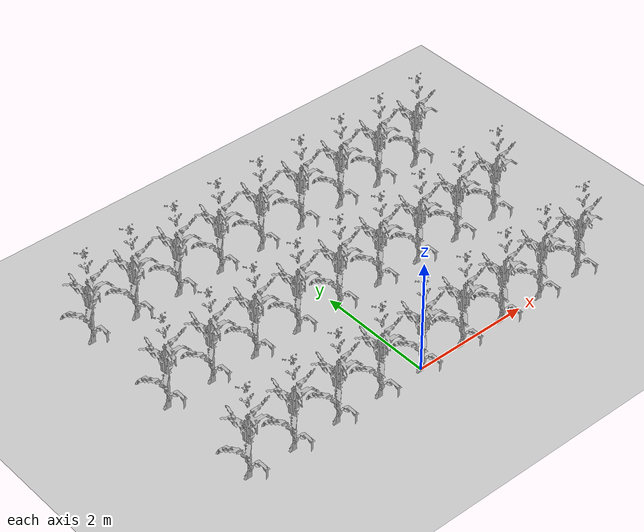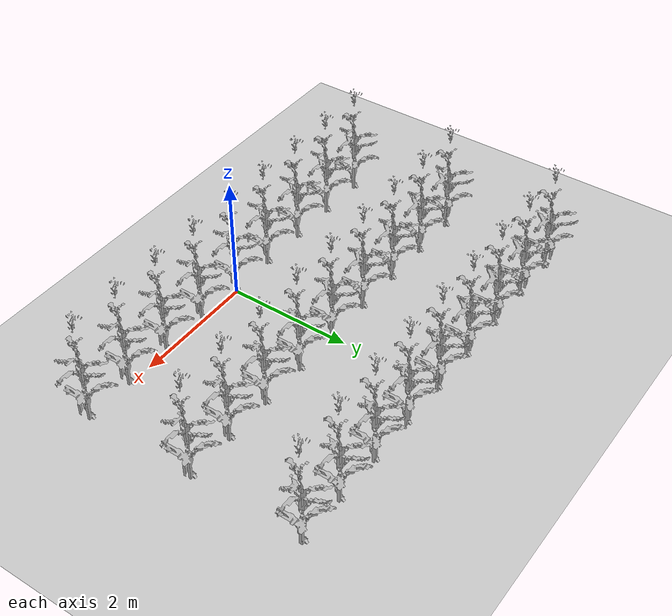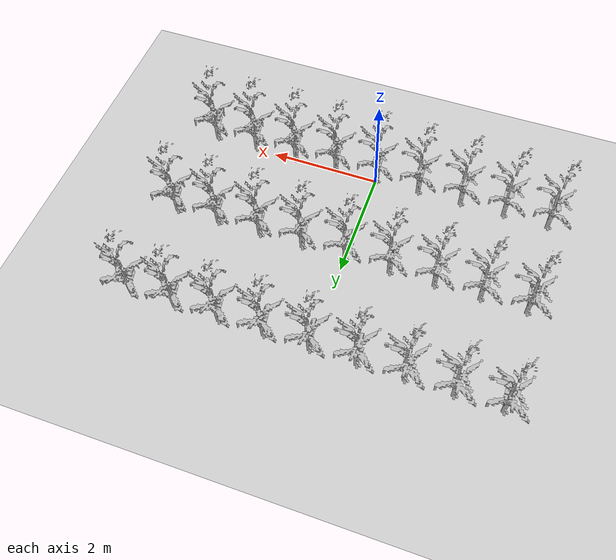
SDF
<?xml version="1.0"?>

<sdf version='1.4'>
    <world name='default'>
        <light name='sun' type='directional'>
	        <cast_shadows>1</cast_shadows>
	        <pose>0 0 10 0 -0 0</pose>
	        <diffuse>0.8 0.8 0.8 1</diffuse>
	        <specular>0.2 0.2 0.2 1</specular>
	        <attenuation>
	            <range>1000</range>
	            <constant>0.9</constant>
	            <linear>0.01</linear>
	            <quadratic>0.001</quadratic>
	        </attenuation>
	        <direction>-0.5 0.1 -0.9</direction>
        </light>
	    <model name='ground_plane'>
	      <static>1</static>
	      <link name='link'>
	        <collision name='collision'>
	          <geometry>
	            <plane>
	              <normal>0 0 1</normal>
	              <size>100 100</size>
	            </plane>
	          </geometry>
	          <surface>
	            <friction>
	              <ode>
	                <mu>100</mu>
	                <mu2>50</mu2>
	              </ode>
	            </friction>
	            <bounce/>
	            <contact>
	              <ode/>
	            </contact>
	          </surface>
	          <max_contacts>10</max_contacts>
	        </collision>
	        <visual name='visual'>
	          <cast_shadows>0</cast_shadows>
	          <geometry>
	            <plane>
	              <normal>0 0 1</normal>
	              <size>1000 1000</size>
	            </plane>
	          </geometry>
	          <material>
	            <script>
	              <uri>file://media/materials/scripts/gazebo.material</uri>
	              <name>Gazebo/Grey</name>
	            </script>
	          </material>
	        </visual>
	        <velocity_decay>
	          <linear>0</linear>
	          <angular>0</angular>
	        </velocity_decay>
	        <self_collide>0</self_collide>
	        <kinematic>0</kinematic>
	        <gravity>1</gravity>
	      </link>
	    </model>
	    <physics type='ode'>
	      <max_step_size>0.01</max_step_size>
	      <real_time_factor>1</real_time_factor>
	      <real_time_update_rate>100</real_time_update_rate>
	      <gravity>0 0 -9.8</gravity>
	    </physics>
	    <scene>
	      <ambient>0.4 0.4 0.4 1</ambient>
	      <background>0.7 0.7 0.7 1</background>
	      <shadows>1</shadows>
	    </scene>

	    <model name='corn_stalk_0,0'>

	      	<static>1</static>

			<link name='link'>

				<pose>0 0 0 0 0 0</pose>
				<visual name='visual'>
				<geometry>
					<mesh>
					<uri>model://corn/meshes/corn_stack.stl</uri>
					<scale>0.01 0.01 0.01</scale>
					</mesh>
				</geometry>
				<material>
				<script>
					<uri>model://corn/materials/scripts</uri>
					<uri>model://corn/materials/textures</uri>
					<name>corn_stack/Diffuse</name>
				</script>
				</material>
				</visual>

				<collision name="Default">
					<pose>0 0 0 0 0 0</pose>
					<geometry>
					<mesh>
					<uri>model://corn/meshes/corn_stack.stl</uri>
					<scale>0.01 0.01 0.01</scale>
					</mesh>
					</geometry>
				</collision>
			</link>
	    </model>
	    <model name='corn_stalk_1,0'>

	      	<static>1</static>

			<link name='link'>

				<pose>0.8 0 0 0 0 0</pose>
				<visual name='visual'>
				<geometry>
					<mesh>
					<uri>model://corn/meshes/corn_stack.stl</uri>
					<scale>0.01 0.01 0.01</scale>
					</mesh>
				</geometry>
				<material>
				<script>
					<uri>model://corn/materials/scripts</uri>
					<uri>model://corn/materials/textures</uri>
					<name>corn_stack/Diffuse</name>
				</script>
				</material>
				</visual>

				<collision name="Default">
					<pose>0 0 0 0 0 0</pose>
					<geometry>
					<mesh>
					<uri>model://corn/meshes/corn_stack.stl</uri>
					<scale>0.01 0.01 0.01</scale>
					</mesh>
					</geometry>
				</collision>
			</link>
	    </model>
	    <model name='corn_stalk_2,0'>

	      	<static>1</static>

			<link name='link'>

				<pose>1.6 0 0 0 0 0</pose>
				<visual name='visual'>
				<geometry>
					<mesh>
					<uri>model://corn/meshes/corn_stack.stl</uri>
					<scale>0.01 0.01 0.01</scale>
					</mesh>
				</geometry>
				<material>
				<script>
					<uri>model://corn/materials/scripts</uri>
					<uri>model://corn/materials/textures</uri>
					<name>corn_stack/Diffuse</name>
				</script>
				</material>
				</visual>

				<collision name="Default">
					<pose>0 0 0 0 0 0</pose>
					<geometry>
					<mesh>
					<uri>model://corn/meshes/corn_stack.stl</uri>
					<scale>0.01 0.01 0.01</scale>
					</mesh>
					</geometry>
				</collision>
			</link>
	    </model>
	    <model name='corn_stalk_3,0'>

	      	<static>1</static>

			<link name='link'>

				<pose>2.4 0 0 0 0 0</pose>
				<visual name='visual'>
				<geometry>
					<mesh>
					<uri>model://corn/meshes/corn_stack.stl</uri>
					<scale>0.01 0.01 0.01</scale>
					</mesh>
				</geometry>
				<material>
				<script>
					<uri>model://corn/materials/scripts</uri>
					<uri>model://corn/materials/textures</uri>
					<name>corn_stack/Diffuse</name>
				</script>
				</material>
				</visual>

				<collision name="Default">
					<pose>0 0 0 0 0 0</pose>
					<geometry>
					<mesh>
					<uri>model://corn/meshes/corn_stack.stl</uri>
					<scale>0.01 0.01 0.01</scale>
					</mesh>
					</geometry>
				</collision>
			</link>
	    </model>
	    <model name='corn_stalk_4,0'>

	      	<static>1</static>

			<link name='link'>

				<pose>3.2 0 0 0 0 0</pose>
				<visual name='visual'>
				<geometry>
					<mesh>
					<uri>model://corn/meshes/corn_stack.stl</uri>
					<scale>0.01 0.01 0.01</scale>
					</mesh>
				</geometry>
				<material>
				<script>
					<uri>model://corn/materials/scripts</uri>
					<uri>model://corn/materials/textures</uri>
					<name>corn_stack/Diffuse</name>
				</script>
				</material>
				</visual>

				<collision name="Default">
					<pose>0 0 0 0 0 0</pose>
					<geometry>
					<mesh>
					<uri>model://corn/meshes/corn_stack.stl</uri>
					<scale>0.01 0.01 0.01</scale>
					</mesh>
					</geometry>
				</collision>
			</link>
	    </model>
	    <model name='corn_stalk_-1,0'>

	      	<static>1</static>

			<link name='link'>

				<pose>-0.8 0 0 0 0 0</pose>
				<visual name='visual'>
				<geometry>
					<mesh>
					<uri>model://corn/meshes/corn_stack.stl</uri>
					<scale>0.01 0.01 0.01</scale>
					</mesh>
				</geometry>
				<material>
				<script>
					<uri>model://corn/materials/scripts</uri>
					<uri>model://corn/materials/textures</uri>
					<name>corn_stack/Diffuse</name>
				</script>
				</material>
				</visual>

				<collision name="Default">
					<pose>0 0 0 0 0 0</pose>
					<geometry>
					<mesh>
					<uri>model://corn/meshes/corn_stack.stl</uri>
					<scale>0.01 0.01 0.01</scale>
					</mesh>
					</geometry>
				</collision>
			</link>
	    </model>
	    <model name='corn_stalk_-2,0'>

	      	<static>1</static>

			<link name='link'>

				<pose>-1.6 0 0 0 0 0</pose>
				<visual name='visual'>
				<geometry>
					<mesh>
					<uri>model://corn/meshes/corn_stack.stl</uri>
					<scale>0.01 0.01 0.01</scale>
					</mesh>
				</geometry>
				<material>
				<script>
					<uri>model://corn/materials/scripts</uri>
					<uri>model://corn/materials/textures</uri>
					<name>corn_stack/Diffuse</name>
				</script>
				</material>
				</visual>

				<collision name="Default">
					<pose>0 0 0 0 0 0</pose>
					<geometry>
					<mesh>
					<uri>model://corn/meshes/corn_stack.stl</uri>
					<scale>0.01 0.01 0.01</scale>
					</mesh>
					</geometry>
				</collision>
			</link>
	    </model>
	    <model name='corn_stalk_-3,0'>

	      	<static>1</static>

			<link name='link'>

				<pose>-2.4 0 0 0 0 0</pose>
				<visual name='visual'>
				<geometry>
					<mesh>
					<uri>model://corn/meshes/corn_stack.stl</uri>
					<scale>0.01 0.01 0.01</scale>
					</mesh>
				</geometry>
				<material>
				<script>
					<uri>model://corn/materials/scripts</uri>
					<uri>model://corn/materials/textures</uri>
					<name>corn_stack/Diffuse</name>
				</script>
				</material>
				</visual>

				<collision name="Default">
					<pose>0 0 0 0 0 0</pose>
					<geometry>
					<mesh>
					<uri>model://corn/meshes/corn_stack.stl</uri>
					<scale>0.01 0.01 0.01</scale>
					</mesh>
					</geometry>
				</collision>
			</link>
	    </model>
	    <model name='corn_stalk_-4,0'>

	      	<static>1</static>

			<link name='link'>

				<pose>-3.2 0 0 0 0 0</pose>
				<visual name='visual'>
				<geometry>
					<mesh>
					<uri>model://corn/meshes/corn_stack.stl</uri>
					<scale>0.01 0.01 0.01</scale>
					</mesh>
				</geometry>
				<material>
				<script>
					<uri>model://corn/materials/scripts</uri>
					<uri>model://corn/materials/textures</uri>
					<name>corn_stack/Diffuse</name>
				</script>
				</material>
				</visual>

				<collision name="Default">
					<pose>0 0 0 0 0 0</pose>
					<geometry>
					<mesh>
					<uri>model://corn/meshes/corn_stack.stl</uri>
					<scale>0.01 0.01 0.01</scale>
					</mesh>
					</geometry>
				</collision>
			</link>
	    </model>

		<model name='corn_stalk_0,1'>

	      	<static>1</static>

			<link name='link'>

				<pose>0 1.8 0 0 0 0</pose>
				<visual name='visual'>
				<geometry>
					<mesh>
					<uri>model://corn/meshes/corn_stack.stl</uri>
					<scale>0.01 0.01 0.01</scale>
					</mesh>
				</geometry>
				<material>
				<script>
					<uri>model://corn/materials/scripts</uri>
					<uri>model://corn/materials/textures</uri>
					<name>corn_stack/Diffuse</name>
				</script>
				</material>
				</visual>

				<collision name="Default">
					<pose>0 0 0 0 0 0</pose>
					<geometry>
					<mesh>
					<uri>model://corn/meshes/corn_stack.stl</uri>
					<scale>0.01 0.01 0.01</scale>
					</mesh>
					</geometry>
				</collision>
			</link>
	    </model>
	    <model name='corn_stalk_1,1'>

	      	<static>1</static>

			<link name='link'>

				<pose>0.8 1.8 0 0 0 0</pose>
				<visual name='visual'>
				<geometry>
					<mesh>
					<uri>model://corn/meshes/corn_stack.stl</uri>
					<scale>0.01 0.01 0.01</scale>
					</mesh>
				</geometry>
				<material>
				<script>
					<uri>model://corn/materials/scripts</uri>
					<uri>model://corn/materials/textures</uri>
					<name>corn_stack/Diffuse</name>
				</script>
				</material>
				</visual>

				<collision name="Default">
					<pose>0 0 0 0 0 0</pose>
					<geometry>
					<mesh>
					<uri>model://corn/meshes/corn_stack.stl</uri>
					<scale>0.01 0.01 0.01</scale>
					</mesh>
					</geometry>
				</collision>
			</link>
	    </model>
	    <model name='corn_stalk_2,1'>

	      	<static>1</static>

			<link name='link'>

				<pose>1.6 1.8 0 0 0 0</pose>
				<visual name='visual'>
				<geometry>
					<mesh>
					<uri>model://corn/meshes/corn_stack.stl</uri>
					<scale>0.01 0.01 0.01</scale>
					</mesh>
				</geometry>
				<material>
				<script>
					<uri>model://corn/materials/scripts</uri>
					<uri>model://corn/materials/textures</uri>
					<name>corn_stack/Diffuse</name>
				</script>
				</material>
				</visual>

				<collision name="Default">
					<pose>0 0 0 0 0 0</pose>
					<geometry>
					<mesh>
					<uri>model://corn/meshes/corn_stack.stl</uri>
					<scale>0.01 0.01 0.01</scale>
					</mesh>
					</geometry>
				</collision>
			</link>
	    </model>
	    <model name='corn_stalk_3,1'>

	      	<static>1</static>

			<link name='link'>

				<pose>2.4 1.8 0 0 0 0</pose>
				<visual name='visual'>
				<geometry>
					<mesh>
					<uri>model://corn/meshes/corn_stack.stl</uri>
					<scale>0.01 0.01 0.01</scale>
					</mesh>
				</geometry>
				<material>
				<script>
					<uri>model://corn/materials/scripts</uri>
					<uri>model://corn/materials/textures</uri>
					<name>corn_stack/Diffuse</name>
				</script>
				</material>
				</visual>

				<collision name="Default">
					<pose>0 0 0 0 0 0</pose>
					<geometry>
					<mesh>
					<uri>model://corn/meshes/corn_stack.stl</uri>
					<scale>0.01 0.01 0.01</scale>
					</mesh>
					</geometry>
				</collision>
			</link>
	    </model>
	    <model name='corn_stalk_4,1'>

	      	<static>1</static>

			<link name='link'>

				<pose>3.2 1.8 0 0 0 0</pose>
				<visual name='visual'>
				<geometry>
					<mesh>
					<uri>model://corn/meshes/corn_stack.stl</uri>
					<scale>0.01 0.01 0.01</scale>
					</mesh>
				</geometry>
				<material>
				<script>
					<uri>model://corn/materials/scripts</uri>
					<uri>model://corn/materials/textures</uri>
					<name>corn_stack/Diffuse</name>
				</script>
				</material>
				</visual>

				<collision name="Default">
					<pose>0 0 0 0 0 0</pose>
					<geometry>
					<mesh>
					<uri>model://corn/meshes/corn_stack.stl</uri>
					<scale>0.01 0.01 0.01</scale>
					</mesh>
					</geometry>
				</collision>
			</link>
	    </model>
	    <model name='corn_stalk_-1,1'>

	      	<static>1</static>

			<link name='link'>

				<pose>-0.8 1.8 0 0 0 0</pose>
				<visual name='visual'>
				<geometry>
					<mesh>
					<uri>model://corn/meshes/corn_stack.stl</uri>
					<scale>0.01 0.01 0.01</scale>
					</mesh>
				</geometry>
				<material>
				<script>
					<uri>model://corn/materials/scripts</uri>
					<uri>model://corn/materials/textures</uri>
					<name>corn_stack/Diffuse</name>
				</script>
				</material>
				</visual>

				<collision name="Default">
					<pose>0 0 0 0 0 0</pose>
					<geometry>
					<mesh>
					<uri>model://corn/meshes/corn_stack.stl</uri>
					<scale>0.01 0.01 0.01</scale>
					</mesh>
					</geometry>
				</collision>
			</link>
	    </model>
	    <model name='corn_stalk_-2,1'>

	      	<static>1</static>

			<link name='link'>

				<pose>-1.6 1.8 0 0 0 0</pose>
				<visual name='visual'>
				<geometry>
					<mesh>
					<uri>model://corn/meshes/corn_stack.stl</uri>
					<scale>0.01 0.01 0.01</scale>
					</mesh>
				</geometry>
				<material>
				<script>
					<uri>model://corn/materials/scripts</uri>
					<uri>model://corn/materials/textures</uri>
					<name>corn_stack/Diffuse</name>
				</script>
				</material>
				</visual>

				<collision name="Default">
					<pose>0 0 0 0 0 0</pose>
					<geometry>
					<mesh>
					<uri>model://corn/meshes/corn_stack.stl</uri>
					<scale>0.01 0.01 0.01</scale>
					</mesh>
					</geometry>
				</collision>
			</link>
	    </model>
	    <model name='corn_stalk_-3,1'>

	      	<static>1</static>

			<link name='link'>

				<pose>-2.4 1.8 0 0 0 0</pose>
				<visual name='visual'>
				<geometry>
					<mesh>
					<uri>model://corn/meshes/corn_stack.stl</uri>
					<scale>0.01 0.01 0.01</scale>
					</mesh>
				</geometry>
				<material>
				<script>
					<uri>model://corn/materials/scripts</uri>
					<uri>model://corn/materials/textures</uri>
					<name>corn_stack/Diffuse</name>
				</script>
				</material>
				</visual>

				<collision name="Default">
					<pose>0 0 0 0 0 0</pose>
					<geometry>
					<mesh>
					<uri>model://corn/meshes/corn_stack.stl</uri>
					<scale>0.01 0.01 0.01</scale>
					</mesh>
					</geometry>
				</collision>
			</link>
	    </model>
	    <model name='corn_stalk_-4,1'>

	      	<static>1</static>

			<link name='link'>

				<pose>-3.2 1.8 0 0 0 0</pose>
				<visual name='visual'>
				<geometry>
					<mesh>
					<uri>model://corn/meshes/corn_stack.stl</uri>
					<scale>0.01 0.01 0.01</scale>
					</mesh>
				</geometry>
				<material>
				<script>
					<uri>model://corn/materials/scripts</uri>
					<uri>model://corn/materials/textures</uri>
					<name>corn_stack/Diffuse</name>
				</script>
				</material>
				</visual>

				<collision name="Default">
					<pose>0 0 0 0 0 0</pose>
					<geometry>
					<mesh>
					<uri>model://corn/meshes/corn_stack.stl</uri>
					<scale>0.01 0.01 0.01</scale>
					</mesh>
					</geometry>
				</collision>
			</link>
	    </model>

		<model name='corn_stalk_0,2'>

	      	<static>1</static>

			<link name='link'>

				<pose>0 3.6 0 0 0 0</pose>
				<visual name='visual'>
				<geometry>
					<mesh>
					<uri>model://corn/meshes/corn_stack.stl</uri>
					<scale>0.01 0.01 0.01</scale>
					</mesh>
				</geometry>
				<material>
				<script>
					<uri>model://corn/materials/scripts</uri>
					<uri>model://corn/materials/textures</uri>
					<name>corn_stack/Diffuse</name>
				</script>
				</material>
				</visual>

				<collision name="Default">
					<pose>0 0 0 0 0 0</pose>
					<geometry>
					<mesh>
					<uri>model://corn/meshes/corn_stack.stl</uri>
					<scale>0.01 0.01 0.01</scale>
					</mesh>
					</geometry>
				</collision>
			</link>
	    </model>
	    <model name='corn_stalk_1,1'>

	      	<static>1</static>

			<link name='link'>

				<pose>0.8 3.6 0 0 0 0</pose>
				<visual name='visual'>
				<geometry>
					<mesh>
					<uri>model://corn/meshes/corn_stack.stl</uri>
					<scale>0.01 0.01 0.01</scale>
					</mesh>
				</geometry>
				<material>
				<script>
					<uri>model://corn/materials/scripts</uri>
					<uri>model://corn/materials/textures</uri>
					<name>corn_stack/Diffuse</name>
				</script>
				</material>
				</visual>

				<collision name="Default">
					<pose>0 0 0 0 0 0</pose>
					<geometry>
					<mesh>
					<uri>model://corn/meshes/corn_stack.stl</uri>
					<scale>0.01 0.01 0.01</scale>
					</mesh>
					</geometry>
				</collision>
			</link>
	    </model>
	    <model name='corn_stalk_2,2'>

	      	<static>1</static>

			<link name='link'>

				<pose>1.6 3.6 0 0 0 0</pose>
				<visual name='visual'>
				<geometry>
					<mesh>
					<uri>model://corn/meshes/corn_stack.stl</uri>
					<scale>0.01 0.01 0.01</scale>
					</mesh>
				</geometry>
				<material>
				<script>
					<uri>model://corn/materials/scripts</uri>
					<uri>model://corn/materials/textures</uri>
					<name>corn_stack/Diffuse</name>
				</script>
				</material>
				</visual>

				<collision name="Default">
					<pose>0 0 0 0 0 0</pose>
					<geometry>
					<mesh>
					<uri>model://corn/meshes/corn_stack.stl</uri>
					<scale>0.01 0.01 0.01</scale>
					</mesh>
					</geometry>
				</collision>
			</link>
	    </model>
	    <model name='corn_stalk_3,2'>

	      	<static>1</static>

			<link name='link'>

				<pose>2.4 3.6 0 0 0 0</pose>
				<visual name='visual'>
				<geometry>
					<mesh>
					<uri>model://corn/meshes/corn_stack.stl</uri>
					<scale>0.01 0.01 0.01</scale>
					</mesh>
				</geometry>
				<material>
				<script>
					<uri>model://corn/materials/scripts</uri>
					<uri>model://corn/materials/textures</uri>
					<name>corn_stack/Diffuse</name>
				</script>
				</material>				</visual>

				<collision name="Default">
					<pose>0 0 0 0 0 0</pose>
					<geometry>
					<mesh>
					<uri>model://corn/meshes/corn_stack.stl</uri>
					<scale>0.01 0.01 0.01</scale>
					</mesh>
					</geometry>
				</collision>
			</link>
	    </model>
	    <model name='corn_stalk_4,2'>

	      	<static>1</static>

			<link name='link'>

				<pose>3.2 3.6 0 0 0 0</pose>
				<visual name='visual'>
				<geometry>
					<mesh>
					<uri>model://corn/meshes/corn_stack.stl</uri>
					<scale>0.01 0.01 0.01</scale>
					</mesh>
				</geometry>
				<material>
				<script>
					<uri>model://corn/materials/scripts</uri>
					<uri>model://corn/materials/textures</uri>
					<name>corn_stack/Diffuse</name>
				</script>
				</material>				</visual>

				<collision name="Default">
					<pose>0 0 0 0 0 0</pose>
					<geometry>
					<mesh>
					<uri>model://corn/meshes/corn_stack.stl</uri>
					<scale>0.01 0.01 0.01</scale>
					</mesh>
					</geometry>
				</collision>
			</link>
	    </model>
	    <model name='corn_stalk_-1,2'>

	      	<static>1</static>

			<link name='link'>

				<pose>-0.8 3.6 0 0 0 0</pose>
				<visual name='visual'>
				<geometry>
					<mesh>
					<uri>model://corn/meshes/corn_stack.stl</uri>
					<scale>0.01 0.01 0.01</scale>
					</mesh>
				</geometry>
				<material>
				<script>
					<uri>model://corn/materials/scripts</uri>
					<uri>model://corn/materials/textures</uri>
					<name>corn_stack/Diffuse</name>
				</script>
				</material>

				</visual>

				<collision name="Default">
					<pose>0 0 0 0 0 0</pose>
					<geometry>
					<mesh>
					<uri>model://corn/meshes/corn_stack.stl</uri>
					<scale>0.01 0.01 0.01</scale>
					</mesh>
					</geometry>
				</collision>
			</link>
	    </model>
	    <model name='corn_stalk_-2,0'>

	      	<static>1</static>

			<link name='link'>
				<pose>-1.6 3.6 0 0 0 0</pose>
				<visual name='visual'>
				<geometry>
					<mesh>
					<uri>model://corn/meshes/corn_stack.stl</uri>
					<scale>0.01 0.01 0.01</scale>
					</mesh>
				</geometry>
				<material>
				<script>
					<uri>model://corn/materials/scripts</uri>
					<uri>model://corn/materials/textures</uri>
					<name>corn_stack/Diffuse</name>
				</script>
				</material>
				</visual>

				<collision name="Default">
					<pose>0 0 0 0 0 0</pose>
					<geometry>
					<mesh>
					<uri>model://corn/meshes/corn_stack.stl</uri>
					<scale>0.01 0.01 0.01</scale>
					</mesh>
					</geometry>
				</collision>
			</link>
	    </model>
	    <model name='corn_stalk_-3,2'>

	      	<static>1</static>

			<link name='link'>

				<pose>-2.4 3.6 0 0 0 0</pose>
				<visual name='visual'>
				<geometry>
					<mesh>
					<uri>model://corn/meshes/corn_stack.stl</uri>
					<scale>0.01 0.01 0.01</scale>
					</mesh>
				</geometry>
				<material>
				<script>
					<uri>model://corn/materials/scripts</uri>
					<uri>model://corn/materials/textures</uri>
					<name>corn_stack/Diffuse</name>
				</script>
				</material>

				</visual>

				<collision name="Default">
					<pose>0 0 0 0 0 0</pose>
					<geometry>
					<mesh>
					<uri>model://corn/meshes/corn_stack.stl</uri>
					<scale>0.01 0.01 0.01</scale>
					</mesh>
					</geometry>
				</collision>
			</link>
	    </model>
	    <model name='corn_stalk_-4,2'>

	      	<static>1</static>

			<link name='link'>

				<pose>-3.2 3.6 0 0 0 0</pose>
				<visual name='visual'>
				<geometry>
					<mesh>
					<uri>model://corn/meshes/corn_stack.stl</uri>
					<scale>0.01 0.01 0.01</scale>
					</mesh>
				</geometry>
				<material>
				<script>
					<uri>model://corn/materials/scripts</uri>
					<uri>model://corn/materials/textures</uri>
					<name>corn_stack/Diffuse</name>
				</script>
				</material>
				</visual>

				<collision name="Default">
					<pose>0 0 0 0 0 0</pose>
					<geometry>
					<mesh>
					<uri>model://corn/meshes/corn_stack.stl</uri>
					<scale>0.01 0.01 0.01</scale>
					</mesh>
					</geometry>
				</collision>
			</link>
	    </model>
	    <gui fullscreen='0'>
	      <camera name='user_camera'>
	        <pose>16.2337 1.23674 17.6497 0 0.923643 -3.08299</pose>
	        <view_controller>orbit</view_controller>
	      </camera>
	    </gui>
 	</world>
</sdf>
